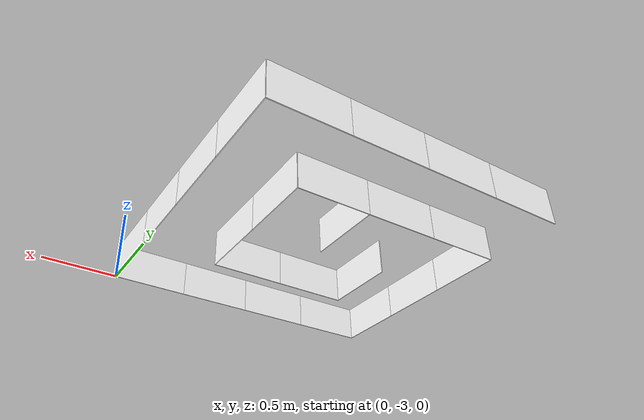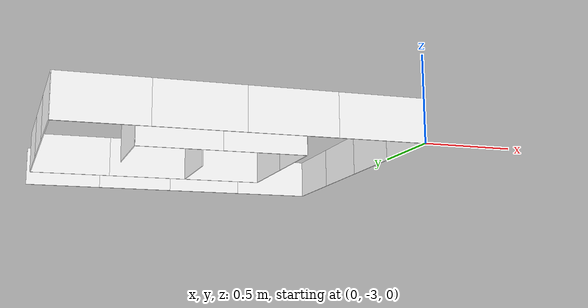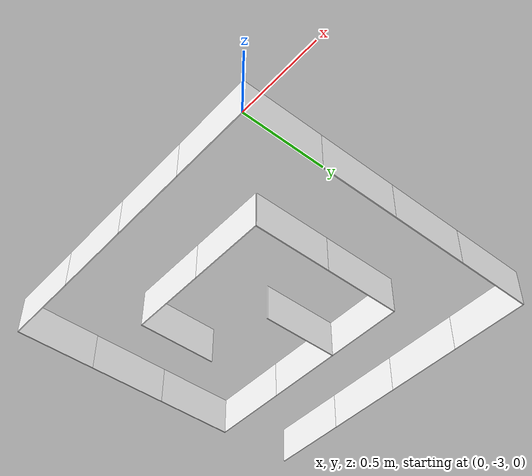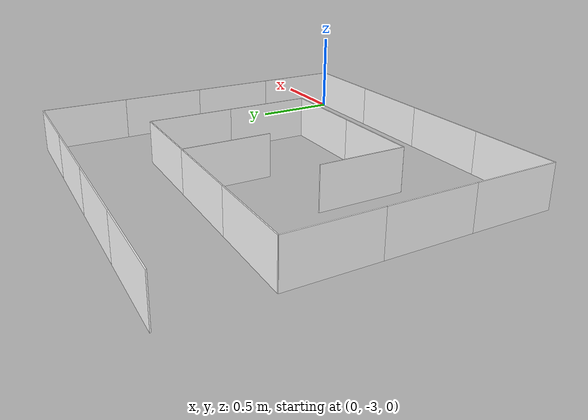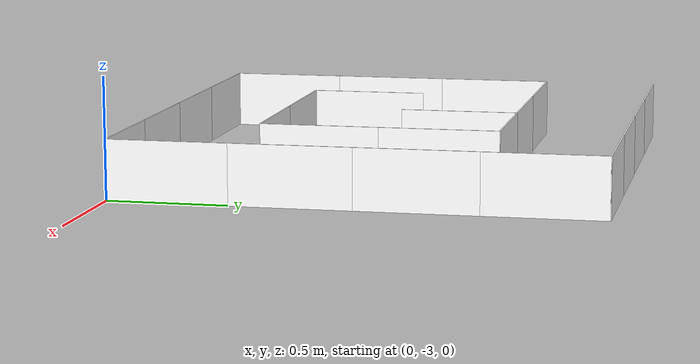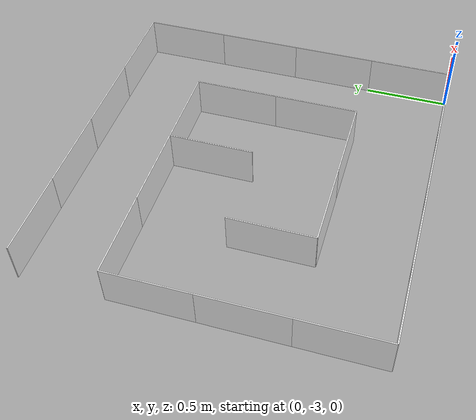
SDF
<sdf version="1.6">
  <!--Generated maze model-->
  <model name="maze">
    <static>1</static>
    <link name="wall_0">
      <pose>0.0 -1.25 0.125 0 0 0</pose>
      <collision name="wall_0_collision">
        <geometry>
          <box>
            <size>0.006 0.5 0.25</size>
          </box>
        </geometry>
      </collision>
      <visual name="wall_0_visual">
        <geometry>
          <box>
            <size>0.006 0.5 0.25</size>
          </box>
        </geometry>
        <material>
          <ambient>1 1 1</ambient>
          <diffuse>1 1 1</diffuse>
        </material>
        <meta>
          <meta>0</meta>
        </meta>
      </visual>
    </link>
    <link name="wall_1">
      <pose>0.0 -1.75 0.125 0 0 0</pose>
      <collision name="wall_1_collision">
        <geometry>
          <box>
            <size>0.006 0.5 0.25</size>
          </box>
        </geometry>
      </collision>
      <visual name="wall_1_visual">
        <geometry>
          <box>
            <size>0.006 0.5 0.25</size>
          </box>
        </geometry>
        <material>
          <ambient>1 1 1</ambient>
          <diffuse>1 1 1</diffuse>
        </material>
        <meta>
          <meta>0</meta>
        </meta>
      </visual>
    </link>
    <link name="wall_2">
      <pose>0.0 -2.25 0.125 0 0 0</pose>
      <collision name="wall_2_collision">
        <geometry>
          <box>
            <size>0.006 0.5 0.25</size>
          </box>
        </geometry>
      </collision>
      <visual name="wall_2_visual">
        <geometry>
          <box>
            <size>0.006 0.5 0.25</size>
          </box>
        </geometry>
        <material>
          <ambient>1 1 1</ambient>
          <diffuse>1 1 1</diffuse>
        </material>
        <meta>
          <meta>0</meta>
        </meta>
      </visual>
    </link>
    <link name="wall_3">
      <pose>0.0 -2.75 0.125 0 0 0</pose>
      <collision name="wall_3_collision">
        <geometry>
          <box>
            <size>0.006 0.5 0.25</size>
          </box>
        </geometry>
      </collision>
      <visual name="wall_3_visual">
        <geometry>
          <box>
            <size>0.006 0.5 0.25</size>
          </box>
        </geometry>
        <material>
          <ambient>1 1 1</ambient>
          <diffuse>1 1 1</diffuse>
        </material>
        <meta>
          <meta>0</meta>
        </meta>
      </visual>
    </link>
    <link name="wall_4">
      <pose>-0.5 -1.75 0.125 0 0 0</pose>
      <collision name="wall_4_collision">
        <geometry>
          <box>
            <size>0.006 0.5 0.25</size>
          </box>
        </geometry>
      </collision>
      <visual name="wall_4_visual">
        <geometry>
          <box>
            <size>0.006 0.5 0.25</size>
          </box>
        </geometry>
        <material>
          <ambient>1 1 1</ambient>
          <diffuse>1 1 1</diffuse>
        </material>
        <meta>
          <meta>0</meta>
        </meta>
      </visual>
    </link>
    <link name="wall_5">
      <pose>-0.5 -2.25 0.125 0 0 0</pose>
      <collision name="wall_5_collision">
        <geometry>
          <box>
            <size>0.006 0.5 0.25</size>
          </box>
        </geometry>
      </collision>
      <visual name="wall_5_visual">
        <geometry>
          <box>
            <size>0.006 0.5 0.25</size>
          </box>
        </geometry>
        <material>
          <ambient>1 1 1</ambient>
          <diffuse>1 1 1</diffuse>
        </material>
        <meta>
          <meta>0</meta>
        </meta>
      </visual>
    </link>
    <link name="wall_6">
      <pose>-1.0 -1.75 0.125 0 0 0</pose>
      <collision name="wall_6_collision">
        <geometry>
          <box>
            <size>0.006 0.5 0.25</size>
          </box>
        </geometry>
      </collision>
      <visual name="wall_6_visual">
        <geometry>
          <box>
            <size>0.006 0.5 0.25</size>
          </box>
        </geometry>
        <material>
          <ambient>1 1 1</ambient>
          <diffuse>1 1 1</diffuse>
        </material>
        <meta>
          <meta>0</meta>
        </meta>
      </visual>
    </link>
    <link name="wall_7">
      <pose>-1.5 -2.25 0.125 0 0 0</pose>
      <collision name="wall_7_collision">
        <geometry>
          <box>
            <size>0.006 0.5 0.25</size>
          </box>
        </geometry>
      </collision>
      <visual name="wall_7_visual">
        <geometry>
          <box>
            <size>0.006 0.5 0.25</size>
          </box>
        </geometry>
        <material>
          <ambient>1 1 1</ambient>
          <diffuse>1 1 1</diffuse>
        </material>
        <meta>
          <meta>0</meta>
        </meta>
      </visual>
    </link>
    <link name="wall_8">
      <pose>-2.0 -1.75 0.125 0 0 0</pose>
      <collision name="wall_8_collision">
        <geometry>
          <box>
            <size>0.006 0.5 0.25</size>
          </box>
        </geometry>
      </collision>
      <visual name="wall_8_visual">
        <geometry>
          <box>
            <size>0.006 0.5 0.25</size>
          </box>
        </geometry>
        <material>
          <ambient>1 1 1</ambient>
          <diffuse>1 1 1</diffuse>
        </material>
        <meta>
          <meta>0</meta>
        </meta>
      </visual>
    </link>
    <link name="wall_9">
      <pose>-2.0 -2.25 0.125 0 0 0</pose>
      <collision name="wall_9_collision">
        <geometry>
          <box>
            <size>0.006 0.5 0.25</size>
          </box>
        </geometry>
      </collision>
      <visual name="wall_9_visual">
        <geometry>
          <box>
            <size>0.006 0.5 0.25</size>
          </box>
        </geometry>
        <material>
          <ambient>1 1 1</ambient>
          <diffuse>1 1 1</diffuse>
        </material>
        <meta>
          <meta>0</meta>
        </meta>
      </visual>
    </link>
    <link name="wall_10">
      <pose>-2.0 -2.75 0.125 0 0 0</pose>
      <collision name="wall_10_collision">
        <geometry>
          <box>
            <size>0.006 0.5 0.25</size>
          </box>
        </geometry>
      </collision>
      <visual name="wall_10_visual">
        <geometry>
          <box>
            <size>0.006 0.5 0.25</size>
          </box>
        </geometry>
        <material>
          <ambient>1 1 1</ambient>
          <diffuse>1 1 1</diffuse>
        </material>
        <meta>
          <meta>0</meta>
        </meta>
      </visual>
    </link>
    <link name="wall_11">
      <pose>-0.25 -1.0 0.125 0 0 0</pose>
      <collision name="wall_11_collision">
        <geometry>
          <box>
            <size>0.5 0.006 0.25</size>
          </box>
        </geometry>
      </collision>
      <visual name="wall_11_visual">
        <geometry>
          <box>
            <size>0.5 0.006 0.25</size>
          </box>
        </geometry>
        <material>
          <ambient>1 1 1</ambient>
          <diffuse>1 1 1</diffuse>
        </material>
        <meta>
          <meta>0</meta>
        </meta>
      </visual>
    </link>
    <link name="wall_12">
      <pose>-0.25 -3.0 0.125 0 0 0</pose>
      <collision name="wall_12_collision">
        <geometry>
          <box>
            <size>0.5 0.006 0.25</size>
          </box>
        </geometry>
      </collision>
      <visual name="wall_12_visual">
        <geometry>
          <box>
            <size>0.5 0.006 0.25</size>
          </box>
        </geometry>
        <material>
          <ambient>1 1 1</ambient>
          <diffuse>1 1 1</diffuse>
        </material>
        <meta>
          <meta>0</meta>
        </meta>
      </visual>
    </link>
    <link name="wall_13">
      <pose>-0.75 -1.0 0.125 0 0 0</pose>
      <collision name="wall_13_collision">
        <geometry>
          <box>
            <size>0.5 0.006 0.25</size>
          </box>
        </geometry>
      </collision>
      <visual name="wall_13_visual">
        <geometry>
          <box>
            <size>0.5 0.006 0.25</size>
          </box>
        </geometry>
        <material>
          <ambient>1 1 1</ambient>
          <diffuse>1 1 1</diffuse>
        </material>
        <meta>
          <meta>0</meta>
        </meta>
      </visual>
    </link>
    <link name="wall_14">
      <pose>-0.75 -1.5 0.125 0 0 0</pose>
      <collision name="wall_14_collision">
        <geometry>
          <box>
            <size>0.5 0.006 0.25</size>
          </box>
        </geometry>
      </collision>
      <visual name="wall_14_visual">
        <geometry>
          <box>
            <size>0.5 0.006 0.25</size>
          </box>
        </geometry>
        <material>
          <ambient>1 1 1</ambient>
          <diffuse>1 1 1</diffuse>
        </material>
        <meta>
          <meta>0</meta>
        </meta>
      </visual>
    </link>
    <link name="wall_15">
      <pose>-0.75 -2.5 0.125 0 0 0</pose>
      <collision name="wall_15_collision">
        <geometry>
          <box>
            <size>0.5 0.006 0.25</size>
          </box>
        </geometry>
      </collision>
      <visual name="wall_15_visual">
        <geometry>
          <box>
            <size>0.5 0.006 0.25</size>
          </box>
        </geometry>
        <material>
          <ambient>1 1 1</ambient>
          <diffuse>1 1 1</diffuse>
        </material>
        <meta>
          <meta>0</meta>
        </meta>
      </visual>
    </link>
    <link name="wall_16">
      <pose>-0.75 -3.0 0.125 0 0 0</pose>
      <collision name="wall_16_collision">
        <geometry>
          <box>
            <size>0.5 0.006 0.25</size>
          </box>
        </geometry>
      </collision>
      <visual name="wall_16_visual">
        <geometry>
          <box>
            <size>0.5 0.006 0.25</size>
          </box>
        </geometry>
        <material>
          <ambient>1 1 1</ambient>
          <diffuse>1 1 1</diffuse>
        </material>
        <meta>
          <meta>0</meta>
        </meta>
      </visual>
    </link>
    <link name="wall_17">
      <pose>-1.25 -1.0 0.125 0 0 0</pose>
      <collision name="wall_17_collision">
        <geometry>
          <box>
            <size>0.5 0.006 0.25</size>
          </box>
        </geometry>
      </collision>
      <visual name="wall_17_visual">
        <geometry>
          <box>
            <size>0.5 0.006 0.25</size>
          </box>
        </geometry>
        <material>
          <ambient>1 1 1</ambient>
          <diffuse>1 1 1</diffuse>
        </material>
        <meta>
          <meta>0</meta>
        </meta>
      </visual>
    </link>
    <link name="wall_18">
      <pose>-1.25 -1.5 0.125 0 0 0</pose>
      <collision name="wall_18_collision">
        <geometry>
          <box>
            <size>0.5 0.006 0.25</size>
          </box>
        </geometry>
      </collision>
      <visual name="wall_18_visual">
        <geometry>
          <box>
            <size>0.5 0.006 0.25</size>
          </box>
        </geometry>
        <material>
          <ambient>1 1 1</ambient>
          <diffuse>1 1 1</diffuse>
        </material>
        <meta>
          <meta>0</meta>
        </meta>
      </visual>
    </link>
    <link name="wall_19">
      <pose>-1.25 -2.5 0.125 0 0 0</pose>
      <collision name="wall_19_collision">
        <geometry>
          <box>
            <size>0.5 0.006 0.25</size>
          </box>
        </geometry>
      </collision>
      <visual name="wall_19_visual">
        <geometry>
          <box>
            <size>0.5 0.006 0.25</size>
          </box>
        </geometry>
        <material>
          <ambient>1 1 1</ambient>
          <diffuse>1 1 1</diffuse>
        </material>
        <meta>
          <meta>0</meta>
        </meta>
      </visual>
    </link>
    <link name="wall_20">
      <pose>-1.25 -3.0 0.125 0 0 0</pose>
      <collision name="wall_20_collision">
        <geometry>
          <box>
            <size>0.5 0.006 0.25</size>
          </box>
        </geometry>
      </collision>
      <visual name="wall_20_visual">
        <geometry>
          <box>
            <size>0.5 0.006 0.25</size>
          </box>
        </geometry>
        <material>
          <ambient>1 1 1</ambient>
          <diffuse>1 1 1</diffuse>
        </material>
        <meta>
          <meta>0</meta>
        </meta>
      </visual>
    </link>
    <link name="wall_21">
      <pose>-1.75 -1.0 0.125 0 0 0</pose>
      <collision name="wall_21_collision">
        <geometry>
          <box>
            <size>0.5 0.006 0.25</size>
          </box>
        </geometry>
      </collision>
      <visual name="wall_21_visual">
        <geometry>
          <box>
            <size>0.5 0.006 0.25</size>
          </box>
        </geometry>
        <material>
          <ambient>1 1 1</ambient>
          <diffuse>1 1 1</diffuse>
        </material>
        <meta>
          <meta>0</meta>
        </meta>
      </visual>
    </link>
    <link name="wall_22">
      <pose>-1.75 -1.5 0.125 0 0 0</pose>
      <collision name="wall_22_collision">
        <geometry>
          <box>
            <size>0.5 0.006 0.25</size>
          </box>
        </geometry>
      </collision>
      <visual name="wall_22_visual">
        <geometry>
          <box>
            <size>0.5 0.006 0.25</size>
          </box>
        </geometry>
        <material>
          <ambient>1 1 1</ambient>
          <diffuse>1 1 1</diffuse>
        </material>
        <meta>
          <meta>0</meta>
        </meta>
      </visual>
    </link>
    <link name="wall_23">
      <pose>-1.75 -3.0 0.125 0 0 0</pose>
      <collision name="wall_23_collision">
        <geometry>
          <box>
            <size>0.5 0.006 0.25</size>
          </box>
        </geometry>
      </collision>
      <visual name="wall_23_visual">
        <geometry>
          <box>
            <size>0.5 0.006 0.25</size>
          </box>
        </geometry>
        <material>
          <ambient>1 1 1</ambient>
          <diffuse>1 1 1</diffuse>
        </material>
        <meta>
          <meta>0</meta>
        </meta>
      </visual>
    </link>
  </model>
</sdf>
